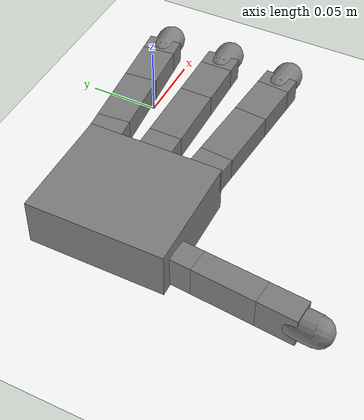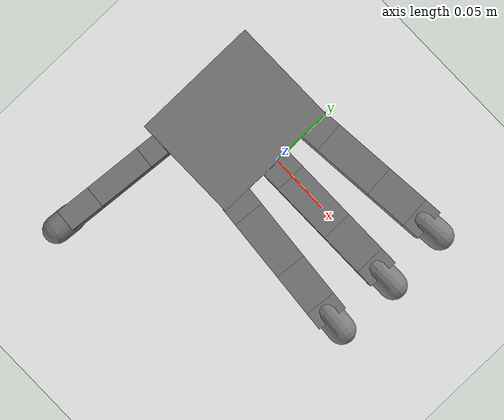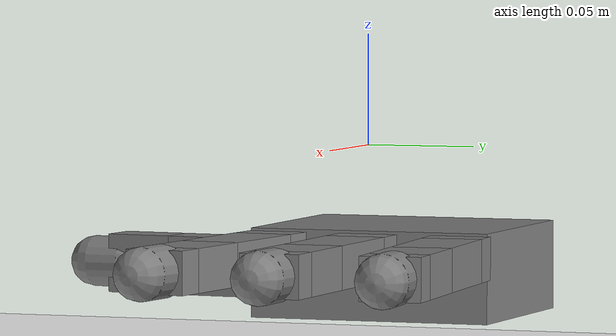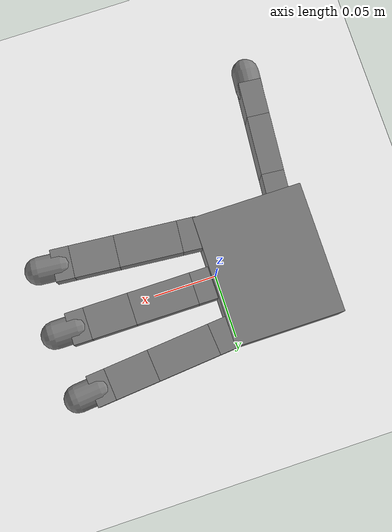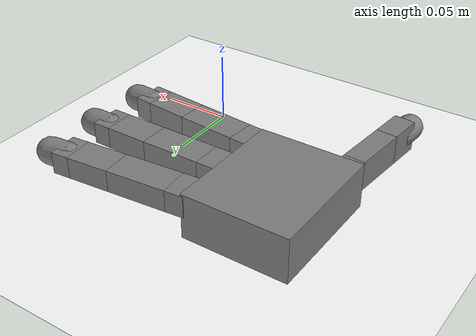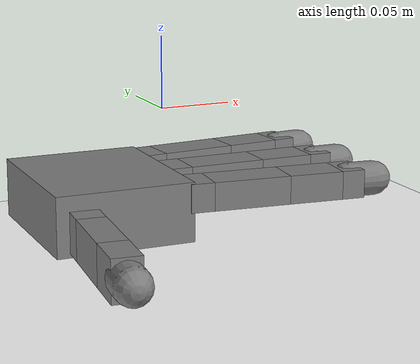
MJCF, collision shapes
<mujoco model="shadow dex-ee hand scene">
  <include file="wonik_allegro/right_hand.xml" />
  <compiler meshdir="assets" />
  <statistic extent=".5" center="0 0 0.1" />
  <default>
    <default class="object/visual">
      <geom type="mesh" contype="0" conaffinity="0" density="100" />
    </default>
    <default class="object/collision">
      <geom type="mesh" group="3" mass="0" />
    </default>
  </default>

  <visual>
    <headlight ambient=".3 .3 .3" diffuse=".6 .6 .6" specular="0 0 0" />
    <map znear=".01" />
    <scale forcewidth=".01" contactwidth=".06" contactheight=".01" jointwidth=".01" framelength=".3" framewidth=".01" />
    <rgba haze="0.15 0.25 0.35 1" />
    <quality shadowsize="8192" />
    <global azimuth="-90" elevation="-20" offheight="600" />
  </visual>

  <asset>
    <texture type="skybox" builtin="gradient" rgb1="1 1 1" rgb2="1 1 1" width="512" height="3072" />
    <texture type="2d" name="groundplane" builtin="checker" mark="edge" rgb1="1 1 1" rgb2="1 1 1" markrgb="0.8 0.8 0.8" width="300" height="300" />
    <material name="groundplane" texture="groundplane" texuniform="true" texrepeat="5 5" reflectance="0.2" />
  </asset>
  <worldbody>
    <light pos="0 0 1.5" dir="0 0 -1" />
    <camera fovy="45" pos="0 0 1.2" quat="1 0 0 0" name="camera_1" />
        <geom name="floor" pos="0 0 -0.1" size="10 10 0.05" type="plane" material="groundplane" friction="3 0.01 0.001" solimp="0.9 0.95 0.001" solref="0.02 5" />
  </worldbody>
</mujoco>

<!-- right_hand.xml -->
<mujoco model="allegro_right">
  <compiler angle="radian" meshdir="assets" autolimits="true"/>

  <option cone="elliptic" impratio="10"/>

  <default>
    <default class="allegro_right">
      <joint axis="0 1 0" damping=".1"/>
      <position kp="1"/>
      <geom density="800"/>

      <default class="visual">
        <geom type="mesh" contype="0" conaffinity="0" group="2" material="black"/>
        <default class="palm_visual">
          <geom mesh="base_link"/>
        </default>
        <default class="base_visual">
          <geom mesh="link_0.0"/>
        </default>
        <default class="proximal_visual">
          <geom mesh="link_1.0"/>
        </default>
        <default class="medial_visual">
          <geom mesh="link_2.0"/>
        </default>
        <default class="distal_visual">
          <geom mesh="link_3.0"/>
        </default>
        <default class="fingertip_visual">
          <geom pos="0 0 0.0267" material="white" mesh="link_3.0_tip"/>
        </default>
        <default class="thumbtip_visual">
          <geom pos="0 0 0.0423" material="white" mesh="link_15.0_tip"/>
        </default>
      </default>

      <default class="collision">
        <geom group="3" type="box" />
        <default class="palm_collision">
          <geom size="0.0204 0.0565 0.0475" pos="-0.0093 0 -0.0475"/>
        </default>
        <default class="base_collision">
          <geom size="0.0098 0.01375 0.0082" pos="0 0 0.0082"/>
          <default class="thumb_base_collision">
            <geom size="0.0179 0.017 0.02275" pos="-0.0179 0.009 0.0145"/>
          </default>
        </default>
        <default class="proximal_collision">
          <geom size="0.0098 0.01375 0.027" pos="0 0 0.027"/>
          <default class="thumb_proximal_collision">
            <geom size="0.0098 0.01375 0.00885" pos="0 0 0.00885"/>
          </default>
        </default>
        <default class="medial_collision">
          <geom size="0.0098 0.01375 0.0192" pos="0 0 0.0192"/>
          <default class="thumb_medial_collision">
            <geom size="0.0098 0.01375 0.0257" pos="0 0 0.0257"/>
          </default>
        </default>
        <default class="distal_collision">
          <geom size="0.0098 0.01375 0.008" pos="0 0 0.008"/>
          <default class="thumb_distal_collision">
            <geom size="0.0098 0.01375 0.0157" pos="0 0 0.0157"/>
          </default>
        </default>
        <default class="fingertip_collision">
          <geom type="capsule" size="0.012 0.01" pos="0 0 0.019"/>
          <default class="thumbtip_collision">
            <geom type="capsule" size="0.012 0.008" pos="0 0 0.035"/>
          </default>
        </default>
      </default>

      <default class="base">
        <joint axis="0 0 1" range="-0.47 0.47"/>
        <position ctrlrange="-0.47 0.47"/>
      </default>
      <default class="proximal">
        <joint range="-0.196 1.61"/>
        <position ctrlrange="-0.196 1.61"/>
      </default>
      <default class="medial">
        <joint range="-0.174 1.709"/>
        <position ctrlrange="-0.174 1.709"/>
      </default>
      <default class="distal">
        <joint range="-0.227 1.618"/>
        <position ctrlrange="-0.227 1.618"/>
      </default>
      <default class="thumb_base">
        <joint axis="-1 0 0" range="0.263 1.396"/>
        <position ctrlrange="0.263 1.396"/>
      </default>
      <default class="thumb_proximal">
        <joint axis="0 0 1" range="-0.105 1.163"/>
        <position ctrlrange="-0.105 1.163"/>
      </default>
      <default class="thumb_medial">
        <joint range="-0.189 1.644"/>
        <position ctrlrange="-0.189 1.644"/>
      </default>
      <default class="thumb_distal">
        <joint range="-0.162 1.719"/>
        <position ctrlrange="-0.162 1.719"/>
      </default>
    </default>
  </default>
<size njmax="10000" nconmax="5000"/>

  <asset>
    <material name="black" rgba="0.2 0.2 0.2 1"/>
    <material name="white" rgba="0.9 0.9 0.9 1"/>

    <mesh file="base_link.stl"/>
    <mesh file="link_0.0.stl"/>
    <mesh file="link_1.0.stl"/>
    <mesh file="link_2.0.stl"/>
    <mesh file="link_3.0.stl"/>
    <mesh file="link_3.0_tip.stl"/>
    <mesh file="link_12.0_right.stl"/>
    <mesh file="link_13.0.stl"/>
    <mesh file="link_14.0.stl"/>
    <mesh file="link_15.0.stl"/>
    <mesh file="link_15.0_tip.stl"/>
  </asset>

  <worldbody>

<body name="tcp">
  <joint name="palm_joint" type="free" damping="100" armature="0.1"/>
      <body  name="palm" quat="0 1 0 1" childclass="allegro_right"  pos="0 0 -0.05">

         <inertial mass="0.4154" pos="0 0 0.0475" diaginertia="1e-4 1e-4 1e-4" />
        <geom class="palm_visual" mesh="base_link" />
        <geom class="palm_collision" />

        <!-- First finger -->
        <body   name="ff_base" pos="0 0.0435 -0.001542" quat="0.999048 -0.0436194 0 0">
          <joint name="ffj0" class="base"/>
          <geom class="base_visual"/>
          <geom class="base_collision"/>
          <body   name="ff_proximal" pos="0 0 0.0164">
            <joint name="ffj1" class="proximal"/>
            <geom class="proximal_visual"/>
            <geom class="proximal_collision"/>
            <body   name="ff_medial" pos="0 0 0.054">
              <joint name="ffj2" class="medial"/>
              <geom class="medial_visual"/>
              <geom class="medial_collision"/>
              <body   name="ff_distal" pos="0 0 0.0384">
                <joint name="ffj3" class="distal"/>
                <geom class="distal_visual"/>
                <geom class="distal_collision"/>
                <body   name="ff_tip">
                  <geom class="fingertip_visual"/>
                  <geom class="fingertip_collision"/>
                </body>
              </body>
            </body>
          </body>
        </body>
        <!-- Middle finger -->
        <body   name="mf_base" pos="0 0 0.0007">
          <joint name="mfj0" class="base"/>
          <geom class="base_visual"/>
          <geom class="base_collision"/>
          <body   name="mf_proximal" pos="0 0 0.0164">
            <joint name="mfj1" class="proximal"/>
            <geom class="proximal_visual"/>
            <geom class="proximal_collision"/>
            <body   name="mf_medial" pos="0 0 0.054">
              <joint name="mfj2" class="medial"/>
              <geom class="medial_visual"/>
              <geom class="medial_collision"/>
              <body   name="mf_distal" pos="0 0 0.0384">
                <joint name="mfj3" class="distal"/>
                <geom class="distal_visual"/>
                <geom class="distal_collision"/>
                <body   name="mf_tip">
                  <geom class="fingertip_visual"/>
                  <geom class="fingertip_collision"/>
                </body>
              </body>
            </body>
          </body>
        </body>
        <!-- Ring finger -->
        <body   name="rf_base" pos="0 -0.0435 -0.001542" quat="0.999048 0.0436194 0 0">
          <joint name="rfj0" class="base"/>
          <geom class="base_visual"/>
          <geom class="base_collision"/>
          <body   name="rf_proximal" pos="0 0 0.0164">
            <joint name="rfj1" class="proximal"/>
            <geom class="proximal_visual"/>
            <geom class="proximal_collision"/>
            <body   name="rf_medial" pos="0 0 0.054">
              <joint name="rfj2" class="medial"/>
              <geom class="medial_visual"/>
              <geom class="medial_collision"/>
              <body   name="rf_distal" pos="0 0 0.0384">
                <joint name="rfj3" class="distal"/>
                <geom class="distal_visual"/>
                <geom class="distal_collision"/>
                <body   name="rf_tip">
                  <geom class="fingertip_visual"/>
                  <geom class="fingertip_collision"/>
                </body>
              </body>
            </body>
          </body>
        </body>
        <!-- Thumb -->
        <body   name="th_base" pos="-0.0182 0.019333 -0.045987" quat="0.477714 -0.521334 -0.521334 -0.477714">
          <joint name="thj0" class="thumb_base"/>
          <geom class="visual" mesh="link_12.0_right"/>
          <geom class="thumb_base_collision"/>
          <body   name="th_proximal" pos="-0.027 0.005 0.0399">
            <joint name="thj1" class="thumb_proximal"/>
            <geom class="visual" mesh="link_13.0"/>
            <geom class="thumb_proximal_collision"/>
            <body   name="th_medial" pos="0 0 0.0177">
              <joint name="thj2" class="thumb_medial"/>
              <geom class="visual" mesh="link_14.0"/>
              <geom class="thumb_medial_collision"/>
              <body   name="th_distal" pos="0 0 0.0514">
                <joint name="thj3" class="thumb_distal"/>
                <geom class="visual" mesh="link_15.0"/>
                <geom class="thumb_distal_collision"/>
                <body   name="th_tip">
                  <geom class="thumbtip_visual"/>
                  <geom class="thumbtip_collision"/>
                </body>
              </body>
            </body>
          </body>
        </body>
      </body>
      </body>

        <body  mocap="true" name="mocap" pos="0 0 0"  >
    </body>
  </worldbody>

  <contact>
    <exclude body1="palm" body2="ff_base"/>
    <exclude body1="palm" body2="mf_base"/>
    <exclude body1="palm" body2="rf_base"/>
    <exclude body1="palm" body2="th_base"/>
    <exclude body1="palm" body2="th_proximal"/>
  </contact>

  <actuator>
    <position name="ffa0" joint="ffj0" class="base"/>
    <position name="ffa1" joint="ffj1" class="proximal"/>
    <position name="ffa2" joint="ffj2" class="medial"/>
    <position name="ffa3" joint="ffj3" class="distal"/>
    <position name="mfa0" joint="mfj0" class="base"/>
    <position name="mfa1" joint="mfj1" class="proximal"/>
    <position name="mfa2" joint="mfj2" class="medial"/>
    <position name="mfa3" joint="mfj3" class="distal"/>
    <position name="rfa0" joint="rfj0" class="base"/>
    <position name="rfa1" joint="rfj1" class="proximal"/>
    <position name="rfa2" joint="rfj2" class="medial"/>
    <position name="rfa3" joint="rfj3" class="distal"/>
    <position name="tha0" joint="thj0" class="thumb_base"/>
    <position name="tha1" joint="thj1" class="thumb_proximal"/>
    <position name="tha2" joint="thj2" class="thumb_medial"/>
    <position name="tha3" joint="thj3" class="thumb_distal"/>
  </actuator>

  <equality>
    <weld body1="mocap" body2="tcp" solref="0.01 1" solimp="0.9 0.99 0.001" />
  </equality>
</mujoco>
